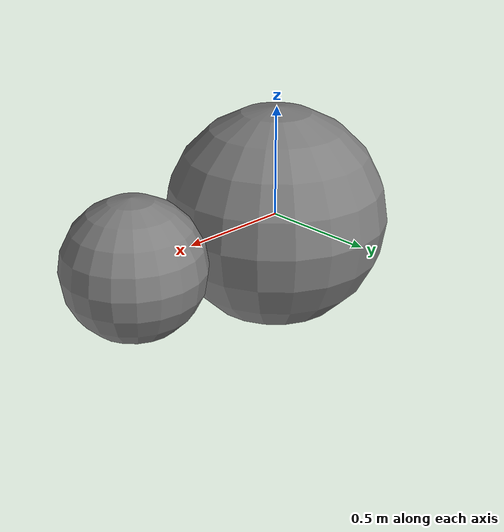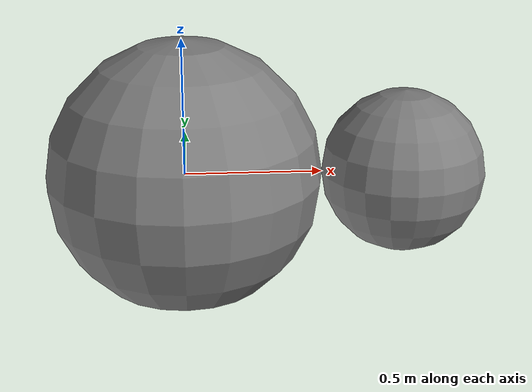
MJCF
<mujoco model="sphere_sphere_touch">
            <option gravity="0 0 0" timestep="0.001"/>
            <worldbody>
                <body name="s1" pos="0 0 0">
                    <joint type="free"/>
                    <geom type="sphere" size="0.5"/>
                </body>
                <body name="s2" pos="0.8 0 0">
                    <joint type="free"/>
                    <geom type="sphere" size="0.3"/>
                </body>
            </worldbody>
        </mujoco>
